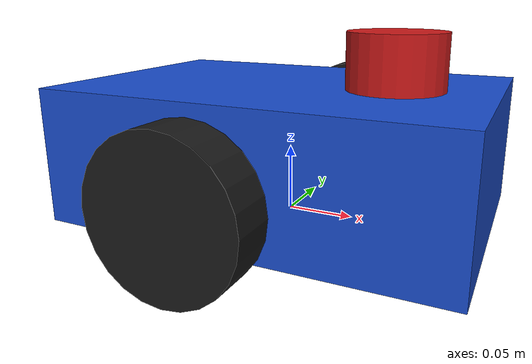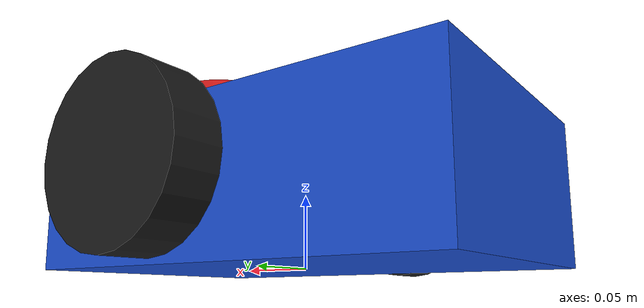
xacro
<?xml version="1.0"?>
<robot xmlns:xacro="http://www.ros.org/wiki/xacro" name="diffbot">

  <!-- ===== Parameters (single source of truth for geometry) ===== -->
  <xacro:arg name="body_clearance" default="0.0"/>
  <xacro:property name="body_clearance" value="$(arg body_clearance)"/>
  <xacro:property name="wheel_radius" value="0.05"/>
  <xacro:property name="wheel_width" value="0.03"/>
  <xacro:property name="wheel_separation" value="0.30"/>
  <xacro:property name="body_length" value="0.30"/>
  <xacro:property name="body_width" value="0.20"/>
  <xacro:property name="body_height" value="0.10"/>
  <xacro:property name="caster_radius" value="0.025"/>

  <!-- ===== Materials ===== -->
  <material name="body_blue"><color rgba="0.1 0.3 0.8 1.0"/></material>
  <material name="wheel_black"><color rgba="0.1 0.1 0.1 1.0"/></material>
  <material name="lidar_red"><color rgba="0.8 0.1 0.1 1.0"/></material>
  <material name="caster_grey"><color rgba="0.6 0.6 0.6 1.0"/></material>

  <!-- ===== Macros ===== -->
  <xacro:macro name="wheel" params="side y_sign">
    <link name="${side}_wheel_link">
      <visual>
        <origin xyz="0 0 0" rpy="${pi/2} 0 0"/>
        <geometry><cylinder radius="${wheel_radius}" length="${wheel_width}"/></geometry>
        <material name="wheel_black"/>
      </visual>
      <collision>
        <origin xyz="0 0 0" rpy="${pi/2} 0 0"/>
        <geometry><cylinder radius="${wheel_radius}" length="${wheel_width}"/></geometry>
      </collision>
      <inertial>
        <mass value="0.1"/>
        <inertia ixx="0.0001" ixy="0" ixz="0" iyy="0.0001" iyz="0" izz="0.0001"/>
      </inertial>
    </link>
    <joint name="${side}_wheel_joint" type="continuous">
      <parent link="base_link"/>
      <child link="${side}_wheel_link"/>
      <origin xyz="0 ${y_sign * wheel_separation / 2} 0" rpy="0 0 0"/>
      <axis xyz="0 1 0"/>
    </joint>
  </xacro:macro>

  <!-- ===== Links and joints ===== -->
  <xacro:arg name="physics" default="false"/>
  <link name="base_footprint">
    <xacro:if value="$(arg physics)">
      <inertial>
        <mass value="0.001"/>
        <inertia ixx="0.000001" ixy="0" ixz="0" iyy="0.000001" iyz="0" izz="0.000001"/>
      </inertial>
    </xacro:if>
  </link>

  <link name="base_link">
    <visual>
      <origin xyz="0 0 ${body_clearance}" rpy="0 0 0"/>
      <geometry><box size="${body_length} ${body_width} ${body_height}"/></geometry>
      <material name="body_blue"/>
    </visual>
    <collision>
      <origin xyz="0 0 ${body_clearance}" rpy="0 0 0"/>
      <geometry><box size="${body_length} ${body_width} ${body_height}"/></geometry>
    </collision>
    <inertial>
      <origin xyz="-0.03 0 0" rpy="0 0 0"/>
      <mass value="1.0"/>
      <inertia ixx="0.005" ixy="0" ixz="0" iyy="0.008" iyz="0" izz="0.01"/>
    </inertial>
  </link>

  <!-- The robot origin (base_link) sits one wheel radius above the ground. -->
  <joint name="base_footprint_joint" type="fixed">
    <parent link="base_footprint"/>
    <child link="base_link"/>
    <origin xyz="0 0 ${wheel_radius}" rpy="0 0 0"/>
  </joint>

  <xacro:wheel side="left" y_sign="1"/>
  <xacro:wheel side="right" y_sign="-1"/>

  <link name="caster_link">
    <visual>
      <geometry><sphere radius="${caster_radius}"/></geometry>
      <material name="caster_grey"/>
    </visual>
    <collision>
      <geometry><sphere radius="${caster_radius}"/></geometry>
    </collision>
    <inertial>
      <mass value="0.05"/>
      <inertia ixx="0.00001" ixy="0" ixz="0" iyy="0.00001" iyz="0" izz="0.00001"/>
    </inertial>
  </link>
  <joint name="caster_joint" type="fixed">
    <parent link="base_link"/>
    <child link="caster_link"/>
    <origin xyz="${-body_length / 2 + 0.04} 0 ${-wheel_radius + caster_radius}" rpy="0 0 0"/>
  </joint>

  <link name="lidar_link">
    <visual>
      <geometry><cylinder radius="0.035" length="0.04"/></geometry>
      <material name="lidar_red"/>
    </visual>
    <inertial>
      <mass value="0.1"/>
      <inertia ixx="0.00005" ixy="0" ixz="0" iyy="0.00005" iyz="0" izz="0.00005"/>
    </inertial>
  </link>
  <joint name="lidar_joint" type="fixed">
    <parent link="base_link"/>
    <child link="lidar_link"/>
    <origin xyz="0.08 0 ${body_height / 2 + 0.02 + body_clearance}" rpy="0 0 0"/>
  </joint>

</robot>
